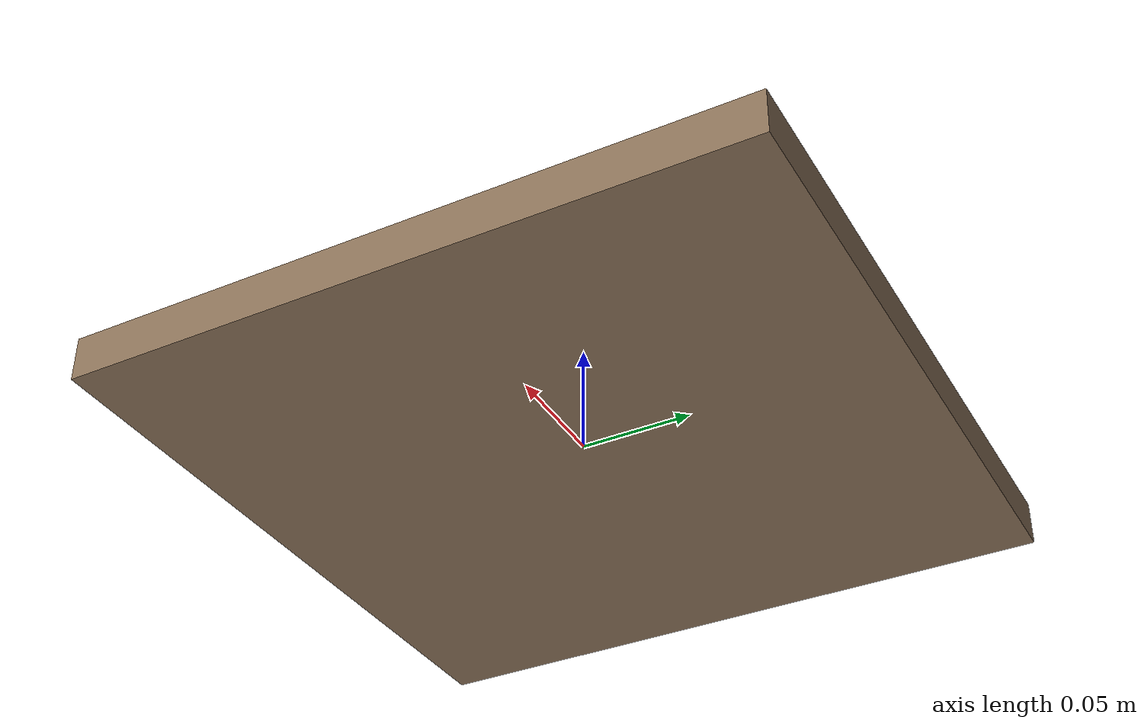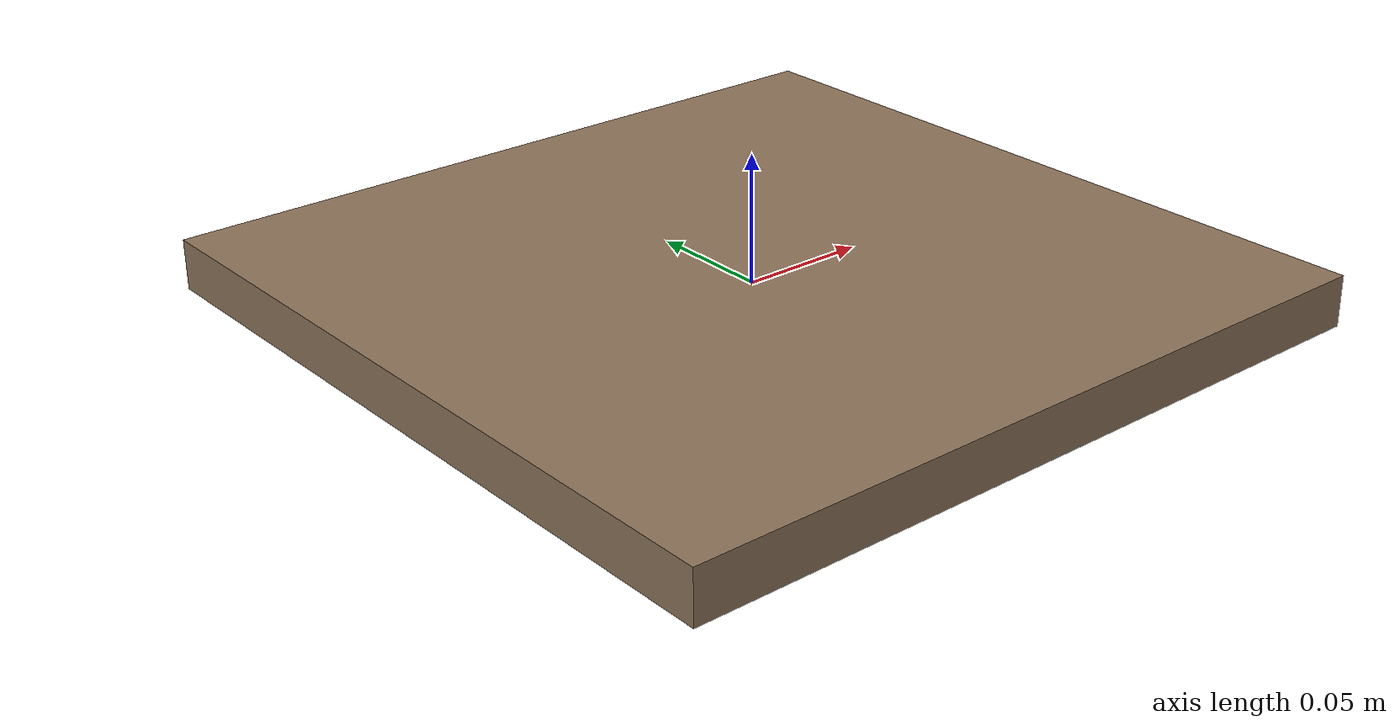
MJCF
<mujoco model="fixture">
  <compiler angle="radian"/>
  <worldbody>
    <body name="fixture">
      <geom name="geom" type="box" size="0.15 0.15 0.01" density="800"
            rgba="0.55 0.45 0.35 1"/>
      <site name="surface" pos="0 0 0.01" size="0.005" group="3"/>
    </body>
  </worldbody>
</mujoco>
